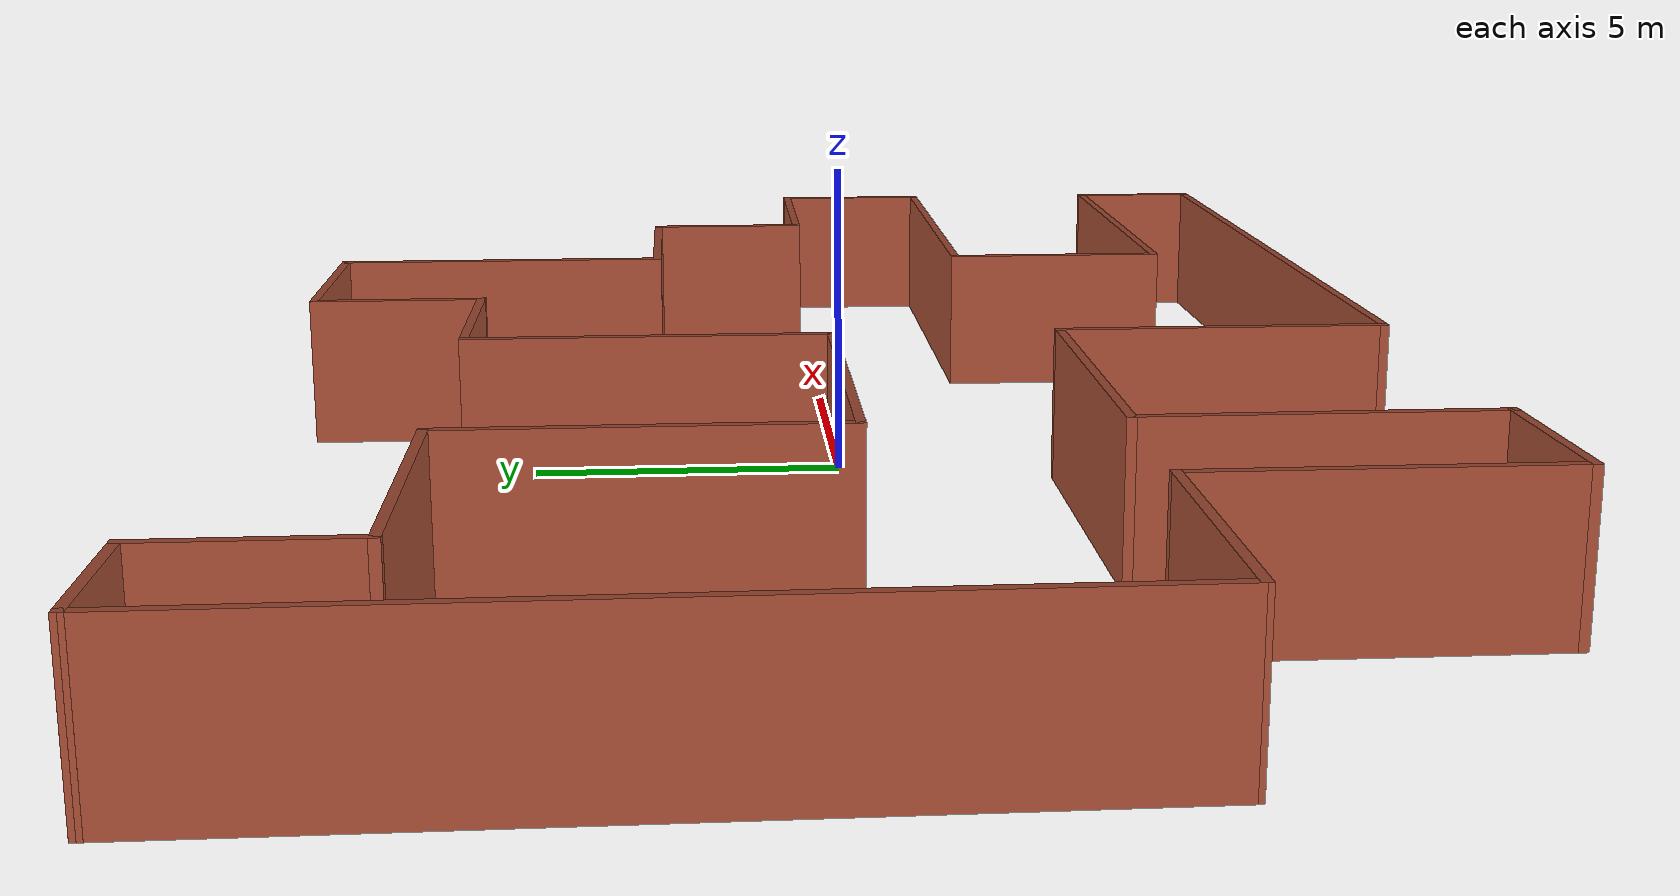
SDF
<?xml version='1.0'?>
<sdf version='1.7'>
  <model name='test_area'>
    <pose>0 0 0 0 0 0</pose>
    <link name='Wall_15'>
      <collision name='Wall_15_Collision'>
        <geometry>
          <box>
            <size>2.5 0.15 2.5</size>
          </box>
        </geometry>
        <pose>0 0 1.25 0 -0 0</pose>
      </collision>
      <visual name='Wall_15_Visual'>
        <pose>0 0 1.25 0 -0 0</pose>
        <geometry>
          <box>
            <size>2.5 0.15 2.5</size>
          </box>
        </geometry>
        <material>
          <script>
            <uri>file://media/materials/scripts/gazebo.material</uri>
            <name>Gazebo/Bricks</name>
          </script>
          <ambient>1 1 1 1</ambient>
        </material>
        <meta>
          <layer>0</layer>
        </meta>
      </visual>
      <pose>-12.7998 8.87485 0 0 -0 0</pose>
    </link>
    <link name='Wall_16'>
      <collision name='Wall_16_Collision'>
        <geometry>
          <box>
            <size>3 0.15 2.5</size>
          </box>
        </geometry>
        <pose>0 0 1.25 0 -0 0</pose>
      </collision>
      <visual name='Wall_16_Visual'>
        <pose>0 0 1.25 0 -0 0</pose>
        <geometry>
          <box>
            <size>3 0.15 2.5</size>
          </box>
        </geometry>
        <material>
          <script>
            <uri>file://media/materials/scripts/gazebo.material</uri>
            <name>Gazebo/Bricks</name>
          </script>
          <ambient>1 1 1 1</ambient>
        </material>
        <meta>
          <layer>0</layer>
        </meta>
      </visual>
      <pose>-11.6248 7.44985 0 0 -0 -1.5708</pose>
    </link>
    <link name='Wall_17'>
      <collision name='Wall_17_Collision'>
        <geometry>
          <box>
            <size>5 0.15 2.5</size>
          </box>
        </geometry>
        <pose>0 0 1.25 0 -0 0</pose>
      </collision>
      <visual name='Wall_17_Visual'>
        <pose>0 0 1.25 0 -0 0</pose>
        <geometry>
          <box>
            <size>5 0.15 2.5</size>
          </box>
        </geometry>
        <material>
          <script>
            <uri>file://media/materials/scripts/gazebo.material</uri>
            <name>Gazebo/Bricks</name>
          </script>
          <ambient>1 1 1 1</ambient>
        </material>
        <meta>
          <layer>0</layer>
        </meta>
      </visual>
      <pose>-9.19985 6.02485 0 0 -0 0</pose>
    </link>
    <link name='Wall_18'>
      <collision name='Wall_18_Collision'>
        <geometry>
          <box>
            <size>6 0.15 2.5</size>
          </box>
        </geometry>
        <pose>0 0 1.25 0 -0 0</pose>
      </collision>
      <visual name='Wall_18_Visual'>
        <pose>0 0 1.25 0 -0 0</pose>
        <geometry>
          <box>
            <size>6 0.15 2.5</size>
          </box>
        </geometry>
        <material>
          <script>
            <uri>file://media/materials/scripts/gazebo.material</uri>
            <name>Gazebo/Bricks</name>
          </script>
          <ambient>1 1 1 1</ambient>
        </material>
        <meta>
          <layer>0</layer>
        </meta>
      </visual>
      <pose>-6.77485 3.09985 0 0 -0 -1.5708</pose>
    </link>
    <link name='Wall_19'>
      <collision name='Wall_19_Collision'>
        <geometry>
          <box>
            <size>6 0.15 2.5</size>
          </box>
        </geometry>
        <pose>0 0 1.25 0 -0 0</pose>
      </collision>
      <visual name='Wall_19_Visual'>
        <pose>0 0 1.25 0 -0 0</pose>
        <geometry>
          <box>
            <size>6 0.15 2.5</size>
          </box>
        </geometry>
        <material>
          <script>
            <uri>file://media/materials/scripts/gazebo.material</uri>
            <name>Gazebo/Bricks</name>
          </script>
          <ambient>1 1 1 1</ambient>
        </material>
        <meta>
          <layer>0</layer>
        </meta>
      </visual>
      <pose>-3.84985 0.174849 0 0 -0 0</pose>
    </link>
    <link name='Wall_20'>
      <collision name='Wall_20_Collision'>
        <geometry>
          <box>
            <size>6 0.15 2.5</size>
          </box>
        </geometry>
        <pose>0 0 1.25 0 -0 0</pose>
      </collision>
      <visual name='Wall_20_Visual'>
        <pose>0 0 1.25 0 -0 0</pose>
        <geometry>
          <box>
            <size>6 0.15 2.5</size>
          </box>
        </geometry>
        <material>
          <script>
            <uri>file://media/materials/scripts/gazebo.material</uri>
            <name>Gazebo/Bricks</name>
          </script>
          <ambient>1 1 1 1</ambient>
        </material>
        <meta>
          <layer>0</layer>
        </meta>
      </visual>
      <pose>-0.92485 3.09985 0 0 -0 1.5708</pose>
    </link>
    <link name='Wall_21'>
      <collision name='Wall_21_Collision'>
        <geometry>
          <box>
            <size>3.5 0.15 2.5</size>
          </box>
        </geometry>
        <pose>0 0 1.25 0 -0 0</pose>
      </collision>
      <visual name='Wall_21_Visual'>
        <pose>0 0 1.25 0 -0 0</pose>
        <geometry>
          <box>
            <size>3.5 0.15 2.5</size>
          </box>
        </geometry>
        <material>
          <script>
            <uri>file://media/materials/scripts/gazebo.material</uri>
            <name>Gazebo/Bricks</name>
          </script>
          <ambient>1 1 1 1</ambient>
        </material>
        <meta>
          <layer>0</layer>
        </meta>
      </visual>
      <pose>0.750151 6.02485 0 0 -0 0</pose>
    </link>
    <link name='Wall_22'>
      <collision name='Wall_22_Collision'>
        <geometry>
          <box>
            <size>3 0.15 2.5</size>
          </box>
        </geometry>
        <pose>0 0 1.25 0 -0 0</pose>
      </collision>
      <visual name='Wall_22_Visual'>
        <pose>0 0 1.25 0 -0 0</pose>
        <geometry>
          <box>
            <size>3 0.15 2.5</size>
          </box>
        </geometry>
        <material>
          <script>
            <uri>file://media/materials/scripts/gazebo.material</uri>
            <name>Gazebo/Bricks</name>
          </script>
          <ambient>1 1 1 1</ambient>
        </material>
        <meta>
          <layer>0</layer>
        </meta>
      </visual>
      <pose>2.42515 7.44985 0 0 -0 1.5708</pose>
    </link>
    <link name='Wall_23'>
      <collision name='Wall_23_Collision'>
        <geometry>
          <box>
            <size>4 0.15 2.5</size>
          </box>
        </geometry>
        <pose>0 0 1.25 0 -0 0</pose>
      </collision>
      <visual name='Wall_23_Visual'>
        <pose>0 0 1.25 0 -0 0</pose>
        <geometry>
          <box>
            <size>4 0.15 2.5</size>
          </box>
        </geometry>
        <material>
          <script>
            <uri>file://media/materials/scripts/gazebo.material</uri>
            <name>Gazebo/Bricks</name>
          </script>
          <ambient>1 1 1 1</ambient>
        </material>
        <meta>
          <layer>0</layer>
        </meta>
      </visual>
      <pose>4.35015 8.87485 0 0 -0 0</pose>
    </link>
    <link name='Wall_24'>
      <collision name='Wall_24_Collision'>
        <geometry>
          <box>
            <size>6 0.15 2.5</size>
          </box>
        </geometry>
        <pose>0 0 1.25 0 -0 0</pose>
      </collision>
      <visual name='Wall_24_Visual'>
        <pose>0 0 1.25 0 -0 0</pose>
        <geometry>
          <box>
            <size>6 0.15 2.5</size>
          </box>
        </geometry>
        <material>
          <script>
            <uri>file://media/materials/scripts/gazebo.material</uri>
            <name>Gazebo/Bricks</name>
          </script>
          <ambient>1 1 1 1</ambient>
        </material>
        <meta>
          <layer>0</layer>
        </meta>
      </visual>
      <pose>6.27515 5.94985 0 0 -0 -1.5708</pose>
    </link>
    <link name='Wall_25'>
      <collision name='Wall_25_Collision'>
        <geometry>
          <box>
            <size>4 0.15 2.5</size>
          </box>
        </geometry>
        <pose>0 0 1.25 0 -0 0</pose>
      </collision>
      <visual name='Wall_25_Visual'>
        <pose>0 0 1.25 0 -0 0</pose>
        <geometry>
          <box>
            <size>4 0.15 2.5</size>
          </box>
        </geometry>
        <material>
          <script>
            <uri>file://media/materials/scripts/gazebo.material</uri>
            <name>Gazebo/Bricks</name>
          </script>
          <ambient>1 1 1 1</ambient>
        </material>
        <meta>
          <layer>0</layer>
        </meta>
      </visual>
      <pose>8.20015 3.02485 0 0 -0 0</pose>
    </link>
    <link name='Wall_26'>
      <collision name='Wall_26_Collision'>
        <geometry>
          <box>
            <size>3 0.15 2.5</size>
          </box>
        </geometry>
        <pose>0 0 1.25 0 -0 0</pose>
      </collision>
      <visual name='Wall_26_Visual'>
        <pose>0 0 1.25 0 -0 0</pose>
        <geometry>
          <box>
            <size>3 0.15 2.5</size>
          </box>
        </geometry>
        <material>
          <script>
            <uri>file://media/materials/scripts/gazebo.material</uri>
            <name>Gazebo/Bricks</name>
          </script>
          <ambient>1 1 1 1</ambient>
        </material>
        <meta>
          <layer>0</layer>
        </meta>
      </visual>
      <pose>10.1252 1.59985 0 0 -0 -1.5708</pose>
    </link>
    <link name='Wall_27'>
      <collision name='Wall_27_Collision'>
        <geometry>
          <box>
            <size>4 0.15 2.5</size>
          </box>
        </geometry>
        <pose>0 0 1.25 0 -0 0</pose>
      </collision>
      <visual name='Wall_27_Visual'>
        <pose>0 0 1.25 0 -0 0</pose>
        <geometry>
          <box>
            <size>4 0.15 2.5</size>
          </box>
        </geometry>
        <material>
          <script>
            <uri>file://media/materials/scripts/gazebo.material</uri>
            <name>Gazebo/Bricks</name>
          </script>
          <ambient>1 1 1 1</ambient>
        </material>
        <meta>
          <layer>0</layer>
        </meta>
      </visual>
      <pose>12.0502 0.174849 0 0 -0 0</pose>
    </link>
    <link name='Wall_28'>
      <collision name='Wall_28_Collision'>
        <geometry>
          <box>
            <size>3 0.15 2.5</size>
          </box>
        </geometry>
        <pose>0 0 1.25 0 -0 0</pose>
      </collision>
      <visual name='Wall_28_Visual'>
        <pose>0 0 1.25 0 -0 0</pose>
        <geometry>
          <box>
            <size>3 0.15 2.5</size>
          </box>
        </geometry>
        <material>
          <script>
            <uri>file://media/materials/scripts/gazebo.material</uri>
            <name>Gazebo/Bricks</name>
          </script>
          <ambient>1 1 1 1</ambient>
        </material>
        <meta>
          <layer>0</layer>
        </meta>
      </visual>
      <pose>13.9751 -1.25015 0 0 -0 -1.5708</pose>
    </link>
    <link name='Wall_29'>
      <collision name='Wall_29_Collision'>
        <geometry>
          <box>
            <size>8 0.15 2.5</size>
          </box>
        </geometry>
        <pose>0 0 1.25 0 -0 0</pose>
      </collision>
      <visual name='Wall_29_Visual'>
        <pose>0 0 1.25 0 -0 0</pose>
        <geometry>
          <box>
            <size>8 0.15 2.5</size>
          </box>
        </geometry>
        <material>
          <script>
            <uri>file://media/materials/scripts/gazebo.material</uri>
            <name>Gazebo/Bricks</name>
          </script>
          <ambient>1 1 1 1</ambient>
        </material>
        <meta>
          <layer>0</layer>
        </meta>
      </visual>
      <pose>10.0502 -2.67515 0 0 -0 3.14159</pose>
    </link>
    <link name='Wall_30'>
      <collision name='Wall_30_Collision'>
        <geometry>
          <box>
            <size>4 0.15 2.5</size>
          </box>
        </geometry>
        <pose>0 0 1.25 0 -0 0</pose>
      </collision>
      <visual name='Wall_30_Visual'>
        <pose>0 0 1.25 0 -0 0</pose>
        <geometry>
          <box>
            <size>4 0.15 2.5</size>
          </box>
        </geometry>
        <material>
          <script>
            <uri>file://media/materials/scripts/gazebo.material</uri>
            <name>Gazebo/Bricks</name>
          </script>
          <ambient>1 1 1 1</ambient>
        </material>
        <meta>
          <layer>0</layer>
        </meta>
      </visual>
      <pose>6.12515 -4.60015 0 0 -0 -1.5708</pose>
    </link>
    <link name='Wall_31'>
      <collision name='Wall_31_Collision'>
        <geometry>
          <box>
            <size>8 0.15 2.5</size>
          </box>
        </geometry>
        <pose>0 0 1.25 0 -0 0</pose>
      </collision>
      <visual name='Wall_31_Visual'>
        <pose>0 0 1.25 0 -0 0</pose>
        <geometry>
          <box>
            <size>8 0.15 2.5</size>
          </box>
        </geometry>
        <material>
          <script>
            <uri>file://media/materials/scripts/gazebo.material</uri>
            <name>Gazebo/Bricks</name>
          </script>
          <ambient>1 1 1 1</ambient>
        </material>
        <meta>
          <layer>0</layer>
        </meta>
      </visual>
      <pose>10.0502 -6.52515 0 0 -0 0</pose>
    </link>
    <link name='Wall_33'>
      <collision name='Wall_33_Collision'>
        <geometry>
          <box>
            <size>2.5 0.15 2.5</size>
          </box>
        </geometry>
        <pose>0 0 1.25 0 -0 0</pose>
      </collision>
      <visual name='Wall_33_Visual'>
        <pose>0 0 1.25 0 -0 0</pose>
        <geometry>
          <box>
            <size>2.5 0.15 2.5</size>
          </box>
        </geometry>
        <material>
          <script>
            <uri>file://media/materials/scripts/gazebo.material</uri>
            <name>Gazebo/Bricks</name>
          </script>
          <ambient>1 1 1 1</ambient>
        </material>
        <meta>
          <layer>0</layer>
        </meta>
      </visual>
      <pose>13.9751 -7.70015 0 0 -0 -1.5708</pose>
    </link>
    <link name='Wall_34'>
      <collision name='Wall_34_Collision'>
        <geometry>
          <box>
            <size>15 0.15 2.5</size>
          </box>
        </geometry>
        <pose>0 0 1.25 0 -0 0</pose>
      </collision>
      <visual name='Wall_34_Visual'>
        <pose>0 0 1.25 0 -0 0</pose>
        <geometry>
          <box>
            <size>15 0.15 2.5</size>
          </box>
        </geometry>
        <material>
          <script>
            <uri>file://media/materials/scripts/gazebo.material</uri>
            <name>Gazebo/Bricks</name>
          </script>
          <ambient>1 1 1 1</ambient>
        </material>
        <meta>
          <layer>0</layer>
        </meta>
      </visual>
      <pose>6.55015 -8.87515 0 0 -0 3.14159</pose>
    </link>
    <link name='Wall_35'>
      <collision name='Wall_35_Collision'>
        <geometry>
          <box>
            <size>5.5 0.15 2.5</size>
          </box>
        </geometry>
        <pose>0 0 1.25 0 -0 0</pose>
      </collision>
      <visual name='Wall_35_Visual'>
        <pose>0 0 1.25 0 -0 0</pose>
        <geometry>
          <box>
            <size>5.5 0.15 2.5</size>
          </box>
        </geometry>
        <material>
          <script>
            <uri>file://media/materials/scripts/gazebo.material</uri>
            <name>Gazebo/Bricks</name>
          </script>
          <ambient>1 1 1 1</ambient>
        </material>
        <meta>
          <layer>0</layer>
        </meta>
      </visual>
      <pose>-0.874849 -6.20015 0 0 -0 1.5708</pose>
    </link>
    <link name='Wall_36'>
      <collision name='Wall_36_Collision'>
        <geometry>
          <box>
            <size>6 0.15 2.5</size>
          </box>
        </geometry>
        <pose>0 0 1.25 0 -0 0</pose>
      </collision>
      <visual name='Wall_36_Visual'>
        <pose>0 0 1.25 0 -0 0</pose>
        <geometry>
          <box>
            <size>6 0.15 2.5</size>
          </box>
        </geometry>
        <material>
          <script>
            <uri>file://media/materials/scripts/gazebo.material</uri>
            <name>Gazebo/Bricks</name>
          </script>
          <ambient>1 1 1 1</ambient>
        </material>
        <meta>
          <layer>0</layer>
        </meta>
      </visual>
      <pose>-3.79985 -3.52515 0 0 -0 3.14159</pose>
    </link>
    <link name='Wall_37'>
      <collision name='Wall_37_Collision'>
        <geometry>
          <box>
            <size>5.5 0.15 2.5</size>
          </box>
        </geometry>
        <pose>0 0 1.25 0 -0 0</pose>
      </collision>
      <visual name='Wall_37_Visual'>
        <pose>0 0 1.25 0 -0 0</pose>
        <geometry>
          <box>
            <size>5.5 0.15 2.5</size>
          </box>
        </geometry>
        <material>
          <script>
            <uri>file://media/materials/scripts/gazebo.material</uri>
            <name>Gazebo/Bricks</name>
          </script>
          <ambient>1 1 1 1</ambient>
        </material>
        <meta>
          <layer>0</layer>
        </meta>
      </visual>
      <pose>-6.72485 -6.20015 0 0 -0 -1.5708</pose>
    </link>
    <link name='Wall_38'>
      <collision name='Wall_38_Collision'>
        <geometry>
          <box>
            <size>3 0.15 2.5</size>
          </box>
        </geometry>
        <pose>0 0 1.25 0 -0 0</pose>
      </collision>
      <visual name='Wall_38_Visual'>
        <pose>0 0 1.25 0 -0 0</pose>
        <geometry>
          <box>
            <size>3 0.15 2.5</size>
          </box>
        </geometry>
        <material>
          <script>
            <uri>file://media/materials/scripts/gazebo.material</uri>
            <name>Gazebo/Bricks</name>
          </script>
          <ambient>1 1 1 1</ambient>
        </material>
        <meta>
          <layer>0</layer>
        </meta>
      </visual>
      <pose>-8.14985 -8.87515 0 0 -0 3.14159</pose>
    </link>
    <link name='Wall_39'>
      <collision name='Wall_39_Collision'>
        <geometry>
          <box>
            <size>5.5 0.15 2.5</size>
          </box>
        </geometry>
        <pose>0 0 1.25 0 -0 0</pose>
      </collision>
      <visual name='Wall_39_Visual'>
        <pose>0 0 1.25 0 -0 0</pose>
        <geometry>
          <box>
            <size>5.5 0.15 2.5</size>
          </box>
        </geometry>
        <material>
          <script>
            <uri>file://media/materials/scripts/gazebo.material</uri>
            <name>Gazebo/Bricks</name>
          </script>
          <ambient>1 1 1 1</ambient>
        </material>
        <meta>
          <layer>0</layer>
        </meta>
      </visual>
      <pose>-9.57485 -6.20015 0 0 -0 1.5708</pose>
    </link>
    <link name='Wall_40'>
      <collision name='Wall_40_Collision'>
        <geometry>
          <box>
            <size>4.5 0.15 2.5</size>
          </box>
        </geometry>
        <pose>0 0 1.25 0 -0 0</pose>
      </collision>
      <visual name='Wall_40_Visual'>
        <pose>0 0 1.25 0 -0 0</pose>
        <geometry>
          <box>
            <size>4.5 0.15 2.5</size>
          </box>
        </geometry>
        <material>
          <script>
            <uri>file://media/materials/scripts/gazebo.material</uri>
            <name>Gazebo/Bricks</name>
          </script>
          <ambient>1 1 1 1</ambient>
        </material>
        <meta>
          <layer>0</layer>
        </meta>
      </visual>
      <pose>-11.7498 -3.52515 0 0 -0 3.14159</pose>
    </link>
    <link name='Wall_41'>
      <collision name='Wall_41_Collision'>
        <geometry>
          <box>
            <size>12.5501 0.15 2.5</size>
          </box>
        </geometry>
        <pose>0 0 1.25 0 -0 0</pose>
      </collision>
      <visual name='Wall_41_Visual'>
        <pose>0 0 1.25 0 -0 0</pose>
        <geometry>
          <box>
            <size>12.5501 0.15 2.5</size>
          </box>
        </geometry>
        <material>
          <script>
            <uri>file://media/materials/scripts/gazebo.material</uri>
            <name>Gazebo/Bricks</name>
          </script>
          <ambient>1 1 1 1</ambient>
        </material>
        <meta>
          <layer>0</layer>
        </meta>
      </visual>
      <pose>-13.9498 2.67485 0 0 -0 1.57483</pose>
    </link>
    <static>1</static>
  </model>
</sdf>
